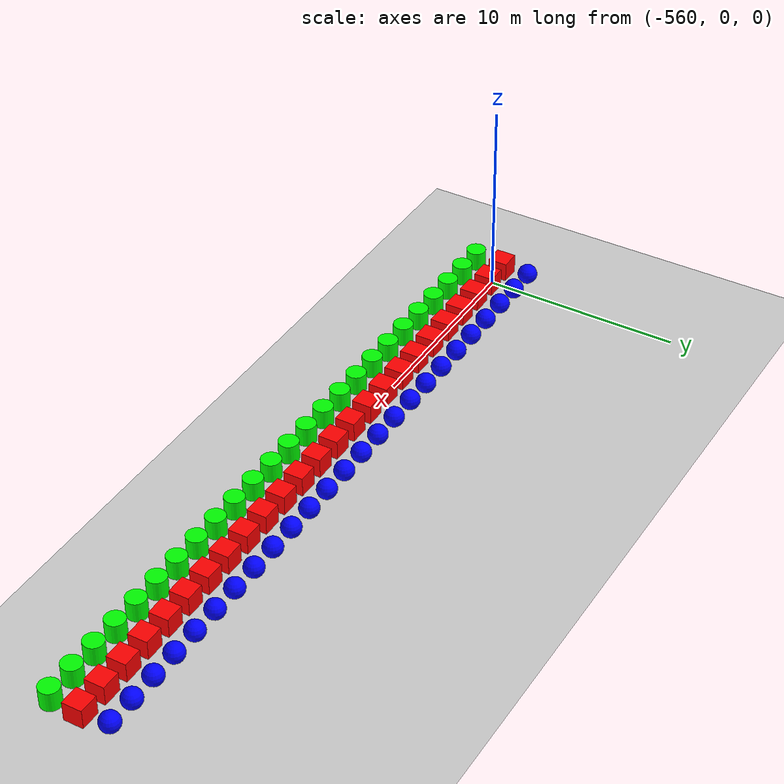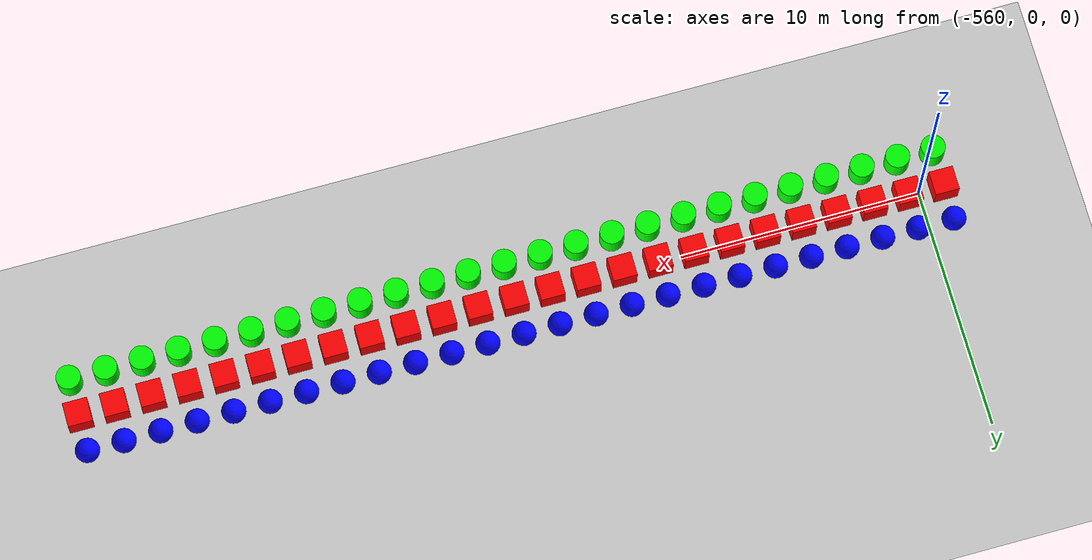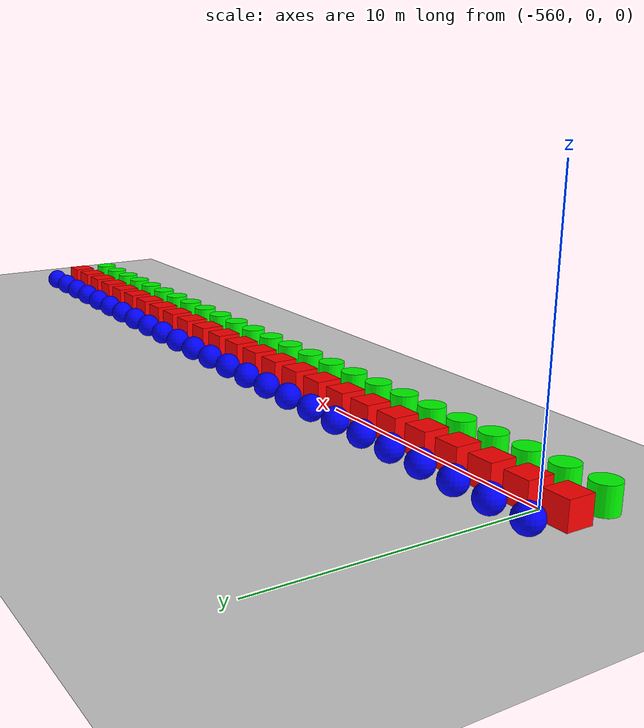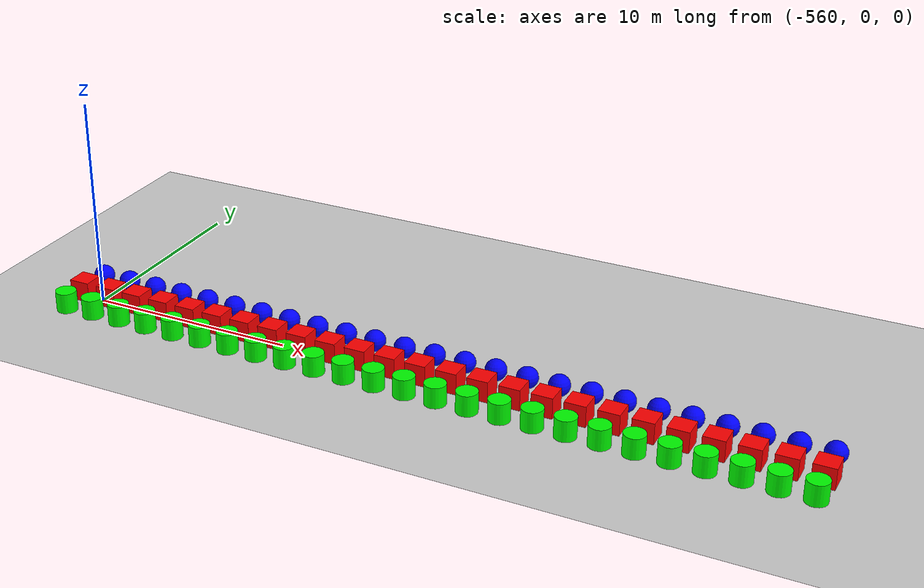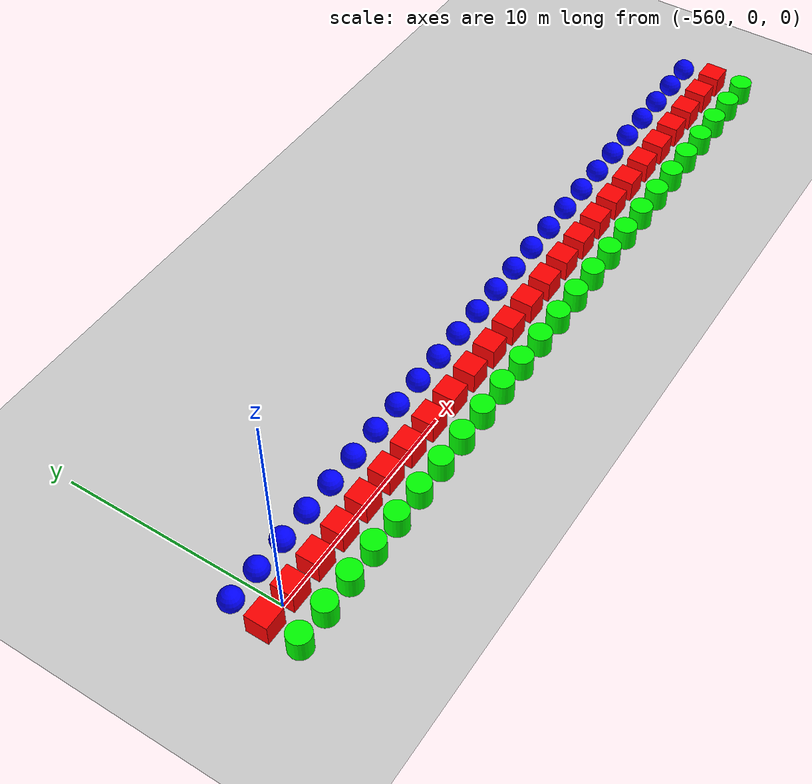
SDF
<sdf version="1.6">
 <world name="shapes">
  <model name="ground_plane">
   <static>true</static>
   <link name="link">
    <collision name="collision">
     <geometry><plane><normal>0 0 1</normal><size>100 100</size></plane></geometry>
    </collision>
    <visual name="visual">
     <geometry><plane><normal>0 0 1</normal><size>100 100</size></plane></geometry>
     <material>
      <ambient>0.8 0.8 0.8 1</ambient>
      <diffuse>0.8 0.8 0.8 1</diffuse>
      <specular>0.8 0.8 0.8 1</specular>
     </material>
    </visual>
   </link>
  </model>
  <model name="box_126">
   <pose>-561.0 0 0.5 0 0 0</pose>
   <link name="box_link">
    <inertial>
     <inertia><ixx>1</ixx><ixy>0</ixy><ixz>0</ixz><iyy>1</iyy><iyz>0</iyz><izz>1</izz></inertia>
     <mass>1.0</mass>
    </inertial>
    <collision name="box_collision"><geometry><box><size>1 1 1</size></box></geometry></collision>
    <visual name="box_visual">
     <geometry><box><size>1 1 1</size></box></geometry>
     <material><ambient>1 0 0 1</ambient><diffuse>1 0 0 1</diffuse><specular>1 0 0 1</specular></material>
    </visual>
   </link>
  </model>
  <model name="cylinder_126">
   <pose>-561.0 -1.5 0.5 0 0 0</pose>
   <link name="cylinder_link">
    <inertial>
     <inertia><ixx>2</ixx><ixy>0</ixy><ixz>0</ixz><iyy>2</iyy><iyz>0</iyz><izz>2</izz></inertia>
     <mass>2.0</mass>
    </inertial>
    <collision name="cylinder_collision">
     <geometry><cylinder><radius>0.5</radius><length>1.0</length></cylinder></geometry>
    </collision>
    <visual name="cylinder_visual">
     <geometry><cylinder><radius>0.5</radius><length>1.0</length></cylinder></geometry>
     <material><ambient>0 1 0 1</ambient><diffuse>0 1 0 1</diffuse><specular>0 1 0 1</specular></material>
    </visual>
   </link>
  </model>
  <model name="sphere_126">
   <pose>-561.0 1.5 0.5 0 0 0</pose>
   <link name="sphere_link">
    <inertial>
     <inertia><ixx>3</ixx><ixy>0</ixy><ixz>0</ixz><iyy>3</iyy><iyz>0</iyz><izz>3</izz></inertia>
     <mass>3.0</mass>
    </inertial>
    <collision name="sphere_collision"><geometry><sphere><radius>0.5</radius></sphere></geometry></collision>
    <visual name="sphere_visual">
     <geometry><sphere><radius>0.5</radius></sphere></geometry>
     <material><ambient>0 0 1 1</ambient><diffuse>0 0 1 1</diffuse><specular>0 0 1 1</specular></material>
    </visual>
   </link>
  </model>
  <model name="box_127">
   <pose>-559.5 0 0.5 0 0 0</pose>
   <link name="box_link">
    <inertial>
     <inertia><ixx>1</ixx><ixy>0</ixy><ixz>0</ixz><iyy>1</iyy><iyz>0</iyz><izz>1</izz></inertia>
     <mass>1.0</mass>
    </inertial>
    <collision name="box_collision"><geometry><box><size>1 1 1</size></box></geometry></collision>
    <visual name="box_visual">
     <geometry><box><size>1 1 1</size></box></geometry>
     <material><ambient>1 0 0 1</ambient><diffuse>1 0 0 1</diffuse><specular>1 0 0 1</specular></material>
    </visual>
   </link>
  </model>
  <model name="cylinder_127">
   <pose>-559.5 -1.5 0.5 0 0 0</pose>
   <link name="cylinder_link">
    <inertial>
     <inertia><ixx>2</ixx><ixy>0</ixy><ixz>0</ixz><iyy>2</iyy><iyz>0</iyz><izz>2</izz></inertia>
     <mass>2.0</mass>
    </inertial>
    <collision name="cylinder_collision">
     <geometry><cylinder><radius>0.5</radius><length>1.0</length></cylinder></geometry>
    </collision>
    <visual name="cylinder_visual">
     <geometry><cylinder><radius>0.5</radius><length>1.0</length></cylinder></geometry>
     <material><ambient>0 1 0 1</ambient><diffuse>0 1 0 1</diffuse><specular>0 1 0 1</specular></material>
    </visual>
   </link>
  </model>
  <model name="sphere_127">
   <pose>-559.5 1.5 0.5 0 0 0</pose>
   <link name="sphere_link">
    <inertial>
     <inertia><ixx>3</ixx><ixy>0</ixy><ixz>0</ixz><iyy>3</iyy><iyz>0</iyz><izz>3</izz></inertia>
     <mass>3.0</mass>
    </inertial>
    <collision name="sphere_collision"><geometry><sphere><radius>0.5</radius></sphere></geometry></collision>
    <visual name="sphere_visual">
     <geometry><sphere><radius>0.5</radius></sphere></geometry>
     <material><ambient>0 0 1 1</ambient><diffuse>0 0 1 1</diffuse><specular>0 0 1 1</specular></material>
    </visual>
   </link>
  </model>
  <model name="box_128">
   <pose>-558.0 0 0.5 0 0 0</pose>
   <link name="box_link">
    <inertial>
     <inertia><ixx>1</ixx><ixy>0</ixy><ixz>0</ixz><iyy>1</iyy><iyz>0</iyz><izz>1</izz></inertia>
     <mass>1.0</mass>
    </inertial>
    <collision name="box_collision"><geometry><box><size>1 1 1</size></box></geometry></collision>
    <visual name="box_visual">
     <geometry><box><size>1 1 1</size></box></geometry>
     <material><ambient>1 0 0 1</ambient><diffuse>1 0 0 1</diffuse><specular>1 0 0 1</specular></material>
    </visual>
   </link>
  </model>
  <model name="cylinder_128">
   <pose>-558.0 -1.5 0.5 0 0 0</pose>
   <link name="cylinder_link">
    <inertial>
     <inertia><ixx>2</ixx><ixy>0</ixy><ixz>0</ixz><iyy>2</iyy><iyz>0</iyz><izz>2</izz></inertia>
     <mass>2.0</mass>
    </inertial>
    <collision name="cylinder_collision">
     <geometry><cylinder><radius>0.5</radius><length>1.0</length></cylinder></geometry>
    </collision>
    <visual name="cylinder_visual">
     <geometry><cylinder><radius>0.5</radius><length>1.0</length></cylinder></geometry>
     <material><ambient>0 1 0 1</ambient><diffuse>0 1 0 1</diffuse><specular>0 1 0 1</specular></material>
    </visual>
   </link>
  </model>
  <model name="sphere_128">
   <pose>-558.0 1.5 0.5 0 0 0</pose>
   <link name="sphere_link">
    <inertial>
     <inertia><ixx>3</ixx><ixy>0</ixy><ixz>0</ixz><iyy>3</iyy><iyz>0</iyz><izz>3</izz></inertia>
     <mass>3.0</mass>
    </inertial>
    <collision name="sphere_collision"><geometry><sphere><radius>0.5</radius></sphere></geometry></collision>
    <visual name="sphere_visual">
     <geometry><sphere><radius>0.5</radius></sphere></geometry>
     <material><ambient>0 0 1 1</ambient><diffuse>0 0 1 1</diffuse><specular>0 0 1 1</specular></material>
    </visual>
   </link>
  </model>
  <model name="box_129">
   <pose>-556.5 0 0.5 0 0 0</pose>
   <link name="box_link">
    <inertial>
     <inertia><ixx>1</ixx><ixy>0</ixy><ixz>0</ixz><iyy>1</iyy><iyz>0</iyz><izz>1</izz></inertia>
     <mass>1.0</mass>
    </inertial>
    <collision name="box_collision"><geometry><box><size>1 1 1</size></box></geometry></collision>
    <visual name="box_visual">
     <geometry><box><size>1 1 1</size></box></geometry>
     <material><ambient>1 0 0 1</ambient><diffuse>1 0 0 1</diffuse><specular>1 0 0 1</specular></material>
    </visual>
   </link>
  </model>
  <model name="cylinder_129">
   <pose>-556.5 -1.5 0.5 0 0 0</pose>
   <link name="cylinder_link">
    <inertial>
     <inertia><ixx>2</ixx><ixy>0</ixy><ixz>0</ixz><iyy>2</iyy><iyz>0</iyz><izz>2</izz></inertia>
     <mass>2.0</mass>
    </inertial>
    <collision name="cylinder_collision">
     <geometry><cylinder><radius>0.5</radius><length>1.0</length></cylinder></geometry>
    </collision>
    <visual name="cylinder_visual">
     <geometry><cylinder><radius>0.5</radius><length>1.0</length></cylinder></geometry>
     <material><ambient>0 1 0 1</ambient><diffuse>0 1 0 1</diffuse><specular>0 1 0 1</specular></material>
    </visual>
   </link>
  </model>
  <model name="sphere_129">
   <pose>-556.5 1.5 0.5 0 0 0</pose>
   <link name="sphere_link">
    <inertial>
     <inertia><ixx>3</ixx><ixy>0</ixy><ixz>0</ixz><iyy>3</iyy><iyz>0</iyz><izz>3</izz></inertia>
     <mass>3.0</mass>
    </inertial>
    <collision name="sphere_collision"><geometry><sphere><radius>0.5</radius></sphere></geometry></collision>
    <visual name="sphere_visual">
     <geometry><sphere><radius>0.5</radius></sphere></geometry>
     <material><ambient>0 0 1 1</ambient><diffuse>0 0 1 1</diffuse><specular>0 0 1 1</specular></material>
    </visual>
   </link>
  </model>
  <model name="box_130">
   <pose>-555.0 0 0.5 0 0 0</pose>
   <link name="box_link">
    <inertial>
     <inertia><ixx>1</ixx><ixy>0</ixy><ixz>0</ixz><iyy>1</iyy><iyz>0</iyz><izz>1</izz></inertia>
     <mass>1.0</mass>
    </inertial>
    <collision name="box_collision"><geometry><box><size>1 1 1</size></box></geometry></collision>
    <visual name="box_visual">
     <geometry><box><size>1 1 1</size></box></geometry>
     <material><ambient>1 0 0 1</ambient><diffuse>1 0 0 1</diffuse><specular>1 0 0 1</specular></material>
    </visual>
   </link>
  </model>
  <model name="cylinder_130">
   <pose>-555.0 -1.5 0.5 0 0 0</pose>
   <link name="cylinder_link">
    <inertial>
     <inertia><ixx>2</ixx><ixy>0</ixy><ixz>0</ixz><iyy>2</iyy><iyz>0</iyz><izz>2</izz></inertia>
     <mass>2.0</mass>
    </inertial>
    <collision name="cylinder_collision">
     <geometry><cylinder><radius>0.5</radius><length>1.0</length></cylinder></geometry>
    </collision>
    <visual name="cylinder_visual">
     <geometry><cylinder><radius>0.5</radius><length>1.0</length></cylinder></geometry>
     <material><ambient>0 1 0 1</ambient><diffuse>0 1 0 1</diffuse><specular>0 1 0 1</specular></material>
    </visual>
   </link>
  </model>
  <model name="sphere_130">
   <pose>-555.0 1.5 0.5 0 0 0</pose>
   <link name="sphere_link">
    <inertial>
     <inertia><ixx>3</ixx><ixy>0</ixy><ixz>0</ixz><iyy>3</iyy><iyz>0</iyz><izz>3</izz></inertia>
     <mass>3.0</mass>
    </inertial>
    <collision name="sphere_collision"><geometry><sphere><radius>0.5</radius></sphere></geometry></collision>
    <visual name="sphere_visual">
     <geometry><sphere><radius>0.5</radius></sphere></geometry>
     <material><ambient>0 0 1 1</ambient><diffuse>0 0 1 1</diffuse><specular>0 0 1 1</specular></material>
    </visual>
   </link>
  </model>
  <model name="box_131">
   <pose>-553.5 0 0.5 0 0 0</pose>
   <link name="box_link">
    <inertial>
     <inertia><ixx>1</ixx><ixy>0</ixy><ixz>0</ixz><iyy>1</iyy><iyz>0</iyz><izz>1</izz></inertia>
     <mass>1.0</mass>
    </inertial>
    <collision name="box_collision"><geometry><box><size>1 1 1</size></box></geometry></collision>
    <visual name="box_visual">
     <geometry><box><size>1 1 1</size></box></geometry>
     <material><ambient>1 0 0 1</ambient><diffuse>1 0 0 1</diffuse><specular>1 0 0 1</specular></material>
    </visual>
   </link>
  </model>
  <model name="cylinder_131">
   <pose>-553.5 -1.5 0.5 0 0 0</pose>
   <link name="cylinder_link">
    <inertial>
     <inertia><ixx>2</ixx><ixy>0</ixy><ixz>0</ixz><iyy>2</iyy><iyz>0</iyz><izz>2</izz></inertia>
     <mass>2.0</mass>
    </inertial>
    <collision name="cylinder_collision">
     <geometry><cylinder><radius>0.5</radius><length>1.0</length></cylinder></geometry>
    </collision>
    <visual name="cylinder_visual">
     <geometry><cylinder><radius>0.5</radius><length>1.0</length></cylinder></geometry>
     <material><ambient>0 1 0 1</ambient><diffuse>0 1 0 1</diffuse><specular>0 1 0 1</specular></material>
    </visual>
   </link>
  </model>
  <model name="sphere_131">
   <pose>-553.5 1.5 0.5 0 0 0</pose>
   <link name="sphere_link">
    <inertial>
     <inertia><ixx>3</ixx><ixy>0</ixy><ixz>0</ixz><iyy>3</iyy><iyz>0</iyz><izz>3</izz></inertia>
     <mass>3.0</mass>
    </inertial>
    <collision name="sphere_collision"><geometry><sphere><radius>0.5</radius></sphere></geometry></collision>
    <visual name="sphere_visual">
     <geometry><sphere><radius>0.5</radius></sphere></geometry>
     <material><ambient>0 0 1 1</ambient><diffuse>0 0 1 1</diffuse><specular>0 0 1 1</specular></material>
    </visual>
   </link>
  </model>
  <model name="box_132">
   <pose>-552.0 0 0.5 0 0 0</pose>
   <link name="box_link">
    <inertial>
     <inertia><ixx>1</ixx><ixy>0</ixy><ixz>0</ixz><iyy>1</iyy><iyz>0</iyz><izz>1</izz></inertia>
     <mass>1.0</mass>
    </inertial>
    <collision name="box_collision"><geometry><box><size>1 1 1</size></box></geometry></collision>
    <visual name="box_visual">
     <geometry><box><size>1 1 1</size></box></geometry>
     <material><ambient>1 0 0 1</ambient><diffuse>1 0 0 1</diffuse><specular>1 0 0 1</specular></material>
    </visual>
   </link>
  </model>
  <model name="cylinder_132">
   <pose>-552.0 -1.5 0.5 0 0 0</pose>
   <link name="cylinder_link">
    <inertial>
     <inertia><ixx>2</ixx><ixy>0</ixy><ixz>0</ixz><iyy>2</iyy><iyz>0</iyz><izz>2</izz></inertia>
     <mass>2.0</mass>
    </inertial>
    <collision name="cylinder_collision">
     <geometry><cylinder><radius>0.5</radius><length>1.0</length></cylinder></geometry>
    </collision>
    <visual name="cylinder_visual">
     <geometry><cylinder><radius>0.5</radius><length>1.0</length></cylinder></geometry>
     <material><ambient>0 1 0 1</ambient><diffuse>0 1 0 1</diffuse><specular>0 1 0 1</specular></material>
    </visual>
   </link>
  </model>
  <model name="sphere_132">
   <pose>-552.0 1.5 0.5 0 0 0</pose>
   <link name="sphere_link">
    <inertial>
     <inertia><ixx>3</ixx><ixy>0</ixy><ixz>0</ixz><iyy>3</iyy><iyz>0</iyz><izz>3</izz></inertia>
     <mass>3.0</mass>
    </inertial>
    <collision name="sphere_collision"><geometry><sphere><radius>0.5</radius></sphere></geometry></collision>
    <visual name="sphere_visual">
     <geometry><sphere><radius>0.5</radius></sphere></geometry>
     <material><ambient>0 0 1 1</ambient><diffuse>0 0 1 1</diffuse><specular>0 0 1 1</specular></material>
    </visual>
   </link>
  </model>
  <model name="box_133">
   <pose>-550.5 0 0.5 0 0 0</pose>
   <link name="box_link">
    <inertial>
     <inertia><ixx>1</ixx><ixy>0</ixy><ixz>0</ixz><iyy>1</iyy><iyz>0</iyz><izz>1</izz></inertia>
     <mass>1.0</mass>
    </inertial>
    <collision name="box_collision"><geometry><box><size>1 1 1</size></box></geometry></collision>
    <visual name="box_visual">
     <geometry><box><size>1 1 1</size></box></geometry>
     <material><ambient>1 0 0 1</ambient><diffuse>1 0 0 1</diffuse><specular>1 0 0 1</specular></material>
    </visual>
   </link>
  </model>
  <model name="cylinder_133">
   <pose>-550.5 -1.5 0.5 0 0 0</pose>
   <link name="cylinder_link">
    <inertial>
     <inertia><ixx>2</ixx><ixy>0</ixy><ixz>0</ixz><iyy>2</iyy><iyz>0</iyz><izz>2</izz></inertia>
     <mass>2.0</mass>
    </inertial>
    <collision name="cylinder_collision">
     <geometry><cylinder><radius>0.5</radius><length>1.0</length></cylinder></geometry>
    </collision>
    <visual name="cylinder_visual">
     <geometry><cylinder><radius>0.5</radius><length>1.0</length></cylinder></geometry>
     <material><ambient>0 1 0 1</ambient><diffuse>0 1 0 1</diffuse><specular>0 1 0 1</specular></material>
    </visual>
   </link>
  </model>
  <model name="sphere_133">
   <pose>-550.5 1.5 0.5 0 0 0</pose>
   <link name="sphere_link">
    <inertial>
     <inertia><ixx>3</ixx><ixy>0</ixy><ixz>0</ixz><iyy>3</iyy><iyz>0</iyz><izz>3</izz></inertia>
     <mass>3.0</mass>
    </inertial>
    <collision name="sphere_collision"><geometry><sphere><radius>0.5</radius></sphere></geometry></collision>
    <visual name="sphere_visual">
     <geometry><sphere><radius>0.5</radius></sphere></geometry>
     <material><ambient>0 0 1 1</ambient><diffuse>0 0 1 1</diffuse><specular>0 0 1 1</specular></material>
    </visual>
   </link>
  </model>
  <model name="box_134">
   <pose>-549.0 0 0.5 0 0 0</pose>
   <link name="box_link">
    <inertial>
     <inertia><ixx>1</ixx><ixy>0</ixy><ixz>0</ixz><iyy>1</iyy><iyz>0</iyz><izz>1</izz></inertia>
     <mass>1.0</mass>
    </inertial>
    <collision name="box_collision"><geometry><box><size>1 1 1</size></box></geometry></collision>
    <visual name="box_visual">
     <geometry><box><size>1 1 1</size></box></geometry>
     <material><ambient>1 0 0 1</ambient><diffuse>1 0 0 1</diffuse><specular>1 0 0 1</specular></material>
    </visual>
   </link>
  </model>
  <model name="cylinder_134">
   <pose>-549.0 -1.5 0.5 0 0 0</pose>
   <link name="cylinder_link">
    <inertial>
     <inertia><ixx>2</ixx><ixy>0</ixy><ixz>0</ixz><iyy>2</iyy><iyz>0</iyz><izz>2</izz></inertia>
     <mass>2.0</mass>
    </inertial>
    <collision name="cylinder_collision">
     <geometry><cylinder><radius>0.5</radius><length>1.0</length></cylinder></geometry>
    </collision>
    <visual name="cylinder_visual">
     <geometry><cylinder><radius>0.5</radius><length>1.0</length></cylinder></geometry>
     <material><ambient>0 1 0 1</ambient><diffuse>0 1 0 1</diffuse><specular>0 1 0 1</specular></material>
    </visual>
   </link>
  </model>
  <model name="sphere_134">
   <pose>-549.0 1.5 0.5 0 0 0</pose>
   <link name="sphere_link">
    <inertial>
     <inertia><ixx>3</ixx><ixy>0</ixy><ixz>0</ixz><iyy>3</iyy><iyz>0</iyz><izz>3</izz></inertia>
     <mass>3.0</mass>
    </inertial>
    <collision name="sphere_collision"><geometry><sphere><radius>0.5</radius></sphere></geometry></collision>
    <visual name="sphere_visual">
     <geometry><sphere><radius>0.5</radius></sphere></geometry>
     <material><ambient>0 0 1 1</ambient><diffuse>0 0 1 1</diffuse><specular>0 0 1 1</specular></material>
    </visual>
   </link>
  </model>
  <model name="box_135">
   <pose>-547.5 0 0.5 0 0 0</pose>
   <link name="box_link">
    <inertial>
     <inertia><ixx>1</ixx><ixy>0</ixy><ixz>0</ixz><iyy>1</iyy><iyz>0</iyz><izz>1</izz></inertia>
     <mass>1.0</mass>
    </inertial>
    <collision name="box_collision"><geometry><box><size>1 1 1</size></box></geometry></collision>
    <visual name="box_visual">
     <geometry><box><size>1 1 1</size></box></geometry>
     <material><ambient>1 0 0 1</ambient><diffuse>1 0 0 1</diffuse><specular>1 0 0 1</specular></material>
    </visual>
   </link>
  </model>
  <model name="cylinder_135">
   <pose>-547.5 -1.5 0.5 0 0 0</pose>
   <link name="cylinder_link">
    <inertial>
     <inertia><ixx>2</ixx><ixy>0</ixy><ixz>0</ixz><iyy>2</iyy><iyz>0</iyz><izz>2</izz></inertia>
     <mass>2.0</mass>
    </inertial>
    <collision name="cylinder_collision">
     <geometry><cylinder><radius>0.5</radius><length>1.0</length></cylinder></geometry>
    </collision>
    <visual name="cylinder_visual">
     <geometry><cylinder><radius>0.5</radius><length>1.0</length></cylinder></geometry>
     <material><ambient>0 1 0 1</ambient><diffuse>0 1 0 1</diffuse><specular>0 1 0 1</specular></material>
    </visual>
   </link>
  </model>
  <model name="sphere_135">
   <pose>-547.5 1.5 0.5 0 0 0</pose>
   <link name="sphere_link">
    <inertial>
     <inertia><ixx>3</ixx><ixy>0</ixy><ixz>0</ixz><iyy>3</iyy><iyz>0</iyz><izz>3</izz></inertia>
     <mass>3.0</mass>
    </inertial>
    <collision name="sphere_collision"><geometry><sphere><radius>0.5</radius></sphere></geometry></collision>
    <visual name="sphere_visual">
     <geometry><sphere><radius>0.5</radius></sphere></geometry>
     <material><ambient>0 0 1 1</ambient><diffuse>0 0 1 1</diffuse><specular>0 0 1 1</specular></material>
    </visual>
   </link>
  </model>
  <model name="box_136">
   <pose>-546.0 0 0.5 0 0 0</pose>
   <link name="box_link">
    <inertial>
     <inertia><ixx>1</ixx><ixy>0</ixy><ixz>0</ixz><iyy>1</iyy><iyz>0</iyz><izz>1</izz></inertia>
     <mass>1.0</mass>
    </inertial>
    <collision name="box_collision"><geometry><box><size>1 1 1</size></box></geometry></collision>
    <visual name="box_visual">
     <geometry><box><size>1 1 1</size></box></geometry>
     <material><ambient>1 0 0 1</ambient><diffuse>1 0 0 1</diffuse><specular>1 0 0 1</specular></material>
    </visual>
   </link>
  </model>
  <model name="cylinder_136">
   <pose>-546.0 -1.5 0.5 0 0 0</pose>
   <link name="cylinder_link">
    <inertial>
     <inertia><ixx>2</ixx><ixy>0</ixy><ixz>0</ixz><iyy>2</iyy><iyz>0</iyz><izz>2</izz></inertia>
     <mass>2.0</mass>
    </inertial>
    <collision name="cylinder_collision">
     <geometry><cylinder><radius>0.5</radius><length>1.0</length></cylinder></geometry>
    </collision>
    <visual name="cylinder_visual">
     <geometry><cylinder><radius>0.5</radius><length>1.0</length></cylinder></geometry>
     <material><ambient>0 1 0 1</ambient><diffuse>0 1 0 1</diffuse><specular>0 1 0 1</specular></material>
    </visual>
   </link>
  </model>
  <model name="sphere_136">
   <pose>-546.0 1.5 0.5 0 0 0</pose>
   <link name="sphere_link">
    <inertial>
     <inertia><ixx>3</ixx><ixy>0</ixy><ixz>0</ixz><iyy>3</iyy><iyz>0</iyz><izz>3</izz></inertia>
     <mass>3.0</mass>
    </inertial>
    <collision name="sphere_collision"><geometry><sphere><radius>0.5</radius></sphere></geometry></collision>
    <visual name="sphere_visual">
     <geometry><sphere><radius>0.5</radius></sphere></geometry>
     <material><ambient>0 0 1 1</ambient><diffuse>0 0 1 1</diffuse><specular>0 0 1 1</specular></material>
    </visual>
   </link>
  </model>
  <model name="box_137">
   <pose>-544.5 0 0.5 0 0 0</pose>
   <link name="box_link">
    <inertial>
     <inertia><ixx>1</ixx><ixy>0</ixy><ixz>0</ixz><iyy>1</iyy><iyz>0</iyz><izz>1</izz></inertia>
     <mass>1.0</mass>
    </inertial>
    <collision name="box_collision"><geometry><box><size>1 1 1</size></box></geometry></collision>
    <visual name="box_visual">
     <geometry><box><size>1 1 1</size></box></geometry>
     <material><ambient>1 0 0 1</ambient><diffuse>1 0 0 1</diffuse><specular>1 0 0 1</specular></material>
    </visual>
   </link>
  </model>
  <model name="cylinder_137">
   <pose>-544.5 -1.5 0.5 0 0 0</pose>
   <link name="cylinder_link">
    <inertial>
     <inertia><ixx>2</ixx><ixy>0</ixy><ixz>0</ixz><iyy>2</iyy><iyz>0</iyz><izz>2</izz></inertia>
     <mass>2.0</mass>
    </inertial>
    <collision name="cylinder_collision">
     <geometry><cylinder><radius>0.5</radius><length>1.0</length></cylinder></geometry>
    </collision>
    <visual name="cylinder_visual">
     <geometry><cylinder><radius>0.5</radius><length>1.0</length></cylinder></geometry>
     <material><ambient>0 1 0 1</ambient><diffuse>0 1 0 1</diffuse><specular>0 1 0 1</specular></material>
    </visual>
   </link>
  </model>
  <model name="sphere_137">
   <pose>-544.5 1.5 0.5 0 0 0</pose>
   <link name="sphere_link">
    <inertial>
     <inertia><ixx>3</ixx><ixy>0</ixy><ixz>0</ixz><iyy>3</iyy><iyz>0</iyz><izz>3</izz></inertia>
     <mass>3.0</mass>
    </inertial>
    <collision name="sphere_collision"><geometry><sphere><radius>0.5</radius></sphere></geometry></collision>
    <visual name="sphere_visual">
     <geometry><sphere><radius>0.5</radius></sphere></geometry>
     <material><ambient>0 0 1 1</ambient><diffuse>0 0 1 1</diffuse><specular>0 0 1 1</specular></material>
    </visual>
   </link>
  </model>
  <model name="box_138">
   <pose>-543.0 0 0.5 0 0 0</pose>
   <link name="box_link">
    <inertial>
     <inertia><ixx>1</ixx><ixy>0</ixy><ixz>0</ixz><iyy>1</iyy><iyz>0</iyz><izz>1</izz></inertia>
     <mass>1.0</mass>
    </inertial>
    <collision name="box_collision"><geometry><box><size>1 1 1</size></box></geometry></collision>
    <visual name="box_visual">
     <geometry><box><size>1 1 1</size></box></geometry>
     <material><ambient>1 0 0 1</ambient><diffuse>1 0 0 1</diffuse><specular>1 0 0 1</specular></material>
    </visual>
   </link>
  </model>
  <model name="cylinder_138">
   <pose>-543.0 -1.5 0.5 0 0 0</pose>
   <link name="cylinder_link">
    <inertial>
     <inertia><ixx>2</ixx><ixy>0</ixy><ixz>0</ixz><iyy>2</iyy><iyz>0</iyz><izz>2</izz></inertia>
     <mass>2.0</mass>
    </inertial>
    <collision name="cylinder_collision">
     <geometry><cylinder><radius>0.5</radius><length>1.0</length></cylinder></geometry>
    </collision>
    <visual name="cylinder_visual">
     <geometry><cylinder><radius>0.5</radius><length>1.0</length></cylinder></geometry>
     <material><ambient>0 1 0 1</ambient><diffuse>0 1 0 1</diffuse><specular>0 1 0 1</specular></material>
    </visual>
   </link>
  </model>
  <model name="sphere_138">
   <pose>-543.0 1.5 0.5 0 0 0</pose>
   <link name="sphere_link">
    <inertial>
     <inertia><ixx>3</ixx><ixy>0</ixy><ixz>0</ixz><iyy>3</iyy><iyz>0</iyz><izz>3</izz></inertia>
     <mass>3.0</mass>
    </inertial>
    <collision name="sphere_collision"><geometry><sphere><radius>0.5</radius></sphere></geometry></collision>
    <visual name="sphere_visual">
     <geometry><sphere><radius>0.5</radius></sphere></geometry>
     <material><ambient>0 0 1 1</ambient><diffuse>0 0 1 1</diffuse><specular>0 0 1 1</specular></material>
    </visual>
   </link>
  </model>
  <model name="box_139">
   <pose>-541.5 0 0.5 0 0 0</pose>
   <link name="box_link">
    <inertial>
     <inertia><ixx>1</ixx><ixy>0</ixy><ixz>0</ixz><iyy>1</iyy><iyz>0</iyz><izz>1</izz></inertia>
     <mass>1.0</mass>
    </inertial>
    <collision name="box_collision"><geometry><box><size>1 1 1</size></box></geometry></collision>
    <visual name="box_visual">
     <geometry><box><size>1 1 1</size></box></geometry>
     <material><ambient>1 0 0 1</ambient><diffuse>1 0 0 1</diffuse><specular>1 0 0 1</specular></material>
    </visual>
   </link>
  </model>
  <model name="cylinder_139">
   <pose>-541.5 -1.5 0.5 0 0 0</pose>
   <link name="cylinder_link">
    <inertial>
     <inertia><ixx>2</ixx><ixy>0</ixy><ixz>0</ixz><iyy>2</iyy><iyz>0</iyz><izz>2</izz></inertia>
     <mass>2.0</mass>
    </inertial>
    <collision name="cylinder_collision">
     <geometry><cylinder><radius>0.5</radius><length>1.0</length></cylinder></geometry>
    </collision>
    <visual name="cylinder_visual">
     <geometry><cylinder><radius>0.5</radius><length>1.0</length></cylinder></geometry>
     <material><ambient>0 1 0 1</ambient><diffuse>0 1 0 1</diffuse><specular>0 1 0 1</specular></material>
    </visual>
   </link>
  </model>
  <model name="sphere_139">
   <pose>-541.5 1.5 0.5 0 0 0</pose>
   <link name="sphere_link">
    <inertial>
     <inertia><ixx>3</ixx><ixy>0</ixy><ixz>0</ixz><iyy>3</iyy><iyz>0</iyz><izz>3</izz></inertia>
     <mass>3.0</mass>
    </inertial>
    <collision name="sphere_collision"><geometry><sphere><radius>0.5</radius></sphere></geometry></collision>
    <visual name="sphere_visual">
     <geometry><sphere><radius>0.5</radius></sphere></geometry>
     <material><ambient>0 0 1 1</ambient><diffuse>0 0 1 1</diffuse><specular>0 0 1 1</specular></material>
    </visual>
   </link>
  </model>
  <model name="box_140">
   <pose>-540.0 0 0.5 0 0 0</pose>
   <link name="box_link">
    <inertial>
     <inertia><ixx>1</ixx><ixy>0</ixy><ixz>0</ixz><iyy>1</iyy><iyz>0</iyz><izz>1</izz></inertia>
     <mass>1.0</mass>
    </inertial>
    <collision name="box_collision"><geometry><box><size>1 1 1</size></box></geometry></collision>
    <visual name="box_visual">
     <geometry><box><size>1 1 1</size></box></geometry>
     <material><ambient>1 0 0 1</ambient><diffuse>1 0 0 1</diffuse><specular>1 0 0 1</specular></material>
    </visual>
   </link>
  </model>
  <model name="cylinder_140">
   <pose>-540.0 -1.5 0.5 0 0 0</pose>
   <link name="cylinder_link">
    <inertial>
     <inertia><ixx>2</ixx><ixy>0</ixy><ixz>0</ixz><iyy>2</iyy><iyz>0</iyz><izz>2</izz></inertia>
     <mass>2.0</mass>
    </inertial>
    <collision name="cylinder_collision">
     <geometry><cylinder><radius>0.5</radius><length>1.0</length></cylinder></geometry>
    </collision>
    <visual name="cylinder_visual">
     <geometry><cylinder><radius>0.5</radius><length>1.0</length></cylinder></geometry>
     <material><ambient>0 1 0 1</ambient><diffuse>0 1 0 1</diffuse><specular>0 1 0 1</specular></material>
    </visual>
   </link>
  </model>
  <model name="sphere_140">
   <pose>-540.0 1.5 0.5 0 0 0</pose>
   <link name="sphere_link">
    <inertial>
     <inertia><ixx>3</ixx><ixy>0</ixy><ixz>0</ixz><iyy>3</iyy><iyz>0</iyz><izz>3</izz></inertia>
     <mass>3.0</mass>
    </inertial>
    <collision name="sphere_collision"><geometry><sphere><radius>0.5</radius></sphere></geometry></collision>
    <visual name="sphere_visual">
     <geometry><sphere><radius>0.5</radius></sphere></geometry>
     <material><ambient>0 0 1 1</ambient><diffuse>0 0 1 1</diffuse><specular>0 0 1 1</specular></material>
    </visual>
   </link>
  </model>
  <model name="box_141">
   <pose>-538.5 0 0.5 0 0 0</pose>
   <link name="box_link">
    <inertial>
     <inertia><ixx>1</ixx><ixy>0</ixy><ixz>0</ixz><iyy>1</iyy><iyz>0</iyz><izz>1</izz></inertia>
     <mass>1.0</mass>
    </inertial>
    <collision name="box_collision"><geometry><box><size>1 1 1</size></box></geometry></collision>
    <visual name="box_visual">
     <geometry><box><size>1 1 1</size></box></geometry>
     <material><ambient>1 0 0 1</ambient><diffuse>1 0 0 1</diffuse><specular>1 0 0 1</specular></material>
    </visual>
   </link>
  </model>
  <model name="cylinder_141">
   <pose>-538.5 -1.5 0.5 0 0 0</pose>
   <link name="cylinder_link">
    <inertial>
     <inertia><ixx>2</ixx><ixy>0</ixy><ixz>0</ixz><iyy>2</iyy><iyz>0</iyz><izz>2</izz></inertia>
     <mass>2.0</mass>
    </inertial>
    <collision name="cylinder_collision">
     <geometry><cylinder><radius>0.5</radius><length>1.0</length></cylinder></geometry>
    </collision>
    <visual name="cylinder_visual">
     <geometry><cylinder><radius>0.5</radius><length>1.0</length></cylinder></geometry>
     <material><ambient>0 1 0 1</ambient><diffuse>0 1 0 1</diffuse><specular>0 1 0 1</specular></material>
    </visual>
   </link>
  </model>
  <model name="sphere_141">
   <pose>-538.5 1.5 0.5 0 0 0</pose>
   <link name="sphere_link">
    <inertial>
     <inertia><ixx>3</ixx><ixy>0</ixy><ixz>0</ixz><iyy>3</iyy><iyz>0</iyz><izz>3</izz></inertia>
     <mass>3.0</mass>
    </inertial>
    <collision name="sphere_collision"><geometry><sphere><radius>0.5</radius></sphere></geometry></collision>
    <visual name="sphere_visual">
     <geometry><sphere><radius>0.5</radius></sphere></geometry>
     <material><ambient>0 0 1 1</ambient><diffuse>0 0 1 1</diffuse><specular>0 0 1 1</specular></material>
    </visual>
   </link>
  </model>
  <model name="box_142">
   <pose>-537.0 0 0.5 0 0 0</pose>
   <link name="box_link">
    <inertial>
     <inertia><ixx>1</ixx><ixy>0</ixy><ixz>0</ixz><iyy>1</iyy><iyz>0</iyz><izz>1</izz></inertia>
     <mass>1.0</mass>
    </inertial>
    <collision name="box_collision"><geometry><box><size>1 1 1</size></box></geometry></collision>
    <visual name="box_visual">
     <geometry><box><size>1 1 1</size></box></geometry>
     <material><ambient>1 0 0 1</ambient><diffuse>1 0 0 1</diffuse><specular>1 0 0 1</specular></material>
    </visual>
   </link>
  </model>
  <model name="cylinder_142">
   <pose>-537.0 -1.5 0.5 0 0 0</pose>
   <link name="cylinder_link">
    <inertial>
     <inertia><ixx>2</ixx><ixy>0</ixy><ixz>0</ixz><iyy>2</iyy><iyz>0</iyz><izz>2</izz></inertia>
     <mass>2.0</mass>
    </inertial>
    <collision name="cylinder_collision">
     <geometry><cylinder><radius>0.5</radius><length>1.0</length></cylinder></geometry>
    </collision>
    <visual name="cylinder_visual">
     <geometry><cylinder><radius>0.5</radius><length>1.0</length></cylinder></geometry>
     <material><ambient>0 1 0 1</ambient><diffuse>0 1 0 1</diffuse><specular>0 1 0 1</specular></material>
    </visual>
   </link>
  </model>
  <model name="sphere_142">
   <pose>-537.0 1.5 0.5 0 0 0</pose>
   <link name="sphere_link">
    <inertial>
     <inertia><ixx>3</ixx><ixy>0</ixy><ixz>0</ixz><iyy>3</iyy><iyz>0</iyz><izz>3</izz></inertia>
     <mass>3.0</mass>
    </inertial>
    <collision name="sphere_collision"><geometry><sphere><radius>0.5</radius></sphere></geometry></collision>
    <visual name="sphere_visual">
     <geometry><sphere><radius>0.5</radius></sphere></geometry>
     <material><ambient>0 0 1 1</ambient><diffuse>0 0 1 1</diffuse><specular>0 0 1 1</specular></material>
    </visual>
   </link>
  </model>
  <model name="box_143">
   <pose>-535.5 0 0.5 0 0 0</pose>
   <link name="box_link">
    <inertial>
     <inertia><ixx>1</ixx><ixy>0</ixy><ixz>0</ixz><iyy>1</iyy><iyz>0</iyz><izz>1</izz></inertia>
     <mass>1.0</mass>
    </inertial>
    <collision name="box_collision"><geometry><box><size>1 1 1</size></box></geometry></collision>
    <visual name="box_visual">
     <geometry><box><size>1 1 1</size></box></geometry>
     <material><ambient>1 0 0 1</ambient><diffuse>1 0 0 1</diffuse><specular>1 0 0 1</specular></material>
    </visual>
   </link>
  </model>
  <model name="cylinder_143">
   <pose>-535.5 -1.5 0.5 0 0 0</pose>
   <link name="cylinder_link">
    <inertial>
     <inertia><ixx>2</ixx><ixy>0</ixy><ixz>0</ixz><iyy>2</iyy><iyz>0</iyz><izz>2</izz></inertia>
     <mass>2.0</mass>
    </inertial>
    <collision name="cylinder_collision">
     <geometry><cylinder><radius>0.5</radius><length>1.0</length></cylinder></geometry>
    </collision>
    <visual name="cylinder_visual">
     <geometry><cylinder><radius>0.5</radius><length>1.0</length></cylinder></geometry>
     <material><ambient>0 1 0 1</ambient><diffuse>0 1 0 1</diffuse><specular>0 1 0 1</specular></material>
    </visual>
   </link>
  </model>
  <model name="sphere_143">
   <pose>-535.5 1.5 0.5 0 0 0</pose>
   <link name="sphere_link">
    <inertial>
     <inertia><ixx>3</ixx><ixy>0</ixy><ixz>0</ixz><iyy>3</iyy><iyz>0</iyz><izz>3</izz></inertia>
     <mass>3.0</mass>
    </inertial>
    <collision name="sphere_collision"><geometry><sphere><radius>0.5</radius></sphere></geometry></collision>
    <visual name="sphere_visual">
     <geometry><sphere><radius>0.5</radius></sphere></geometry>
     <material><ambient>0 0 1 1</ambient><diffuse>0 0 1 1</diffuse><specular>0 0 1 1</specular></material>
    </visual>
   </link>
  </model>
  <model name="box_144">
   <pose>-534.0 0 0.5 0 0 0</pose>
   <link name="box_link">
    <inertial>
     <inertia><ixx>1</ixx><ixy>0</ixy><ixz>0</ixz><iyy>1</iyy><iyz>0</iyz><izz>1</izz></inertia>
     <mass>1.0</mass>
    </inertial>
    <collision name="box_collision"><geometry><box><size>1 1 1</size></box></geometry></collision>
    <visual name="box_visual">
     <geometry><box><size>1 1 1</size></box></geometry>
     <material><ambient>1 0 0 1</ambient><diffuse>1 0 0 1</diffuse><specular>1 0 0 1</specular></material>
    </visual>
   </link>
  </model>
  <model name="cylinder_144">
   <pose>-534.0 -1.5 0.5 0 0 0</pose>
   <link name="cylinder_link">
    <inertial>
     <inertia><ixx>2</ixx><ixy>0</ixy><ixz>0</ixz><iyy>2</iyy><iyz>0</iyz><izz>2</izz></inertia>
     <mass>2.0</mass>
    </inertial>
    <collision name="cylinder_collision">
     <geometry><cylinder><radius>0.5</radius><length>1.0</length></cylinder></geometry>
    </collision>
    <visual name="cylinder_visual">
     <geometry><cylinder><radius>0.5</radius><length>1.0</length></cylinder></geometry>
     <material><ambient>0 1 0 1</ambient><diffuse>0 1 0 1</diffuse><specular>0 1 0 1</specular></material>
    </visual>
   </link>
  </model>
  <model name="sphere_144">
   <pose>-534.0 1.5 0.5 0 0 0</pose>
   <link name="sphere_link">
    <inertial>
     <inertia><ixx>3</ixx><ixy>0</ixy><ixz>0</ixz><iyy>3</iyy><iyz>0</iyz><izz>3</izz></inertia>
     <mass>3.0</mass>
    </inertial>
    <collision name="sphere_collision"><geometry><sphere><radius>0.5</radius></sphere></geometry></collision>
    <visual name="sphere_visual">
     <geometry><sphere><radius>0.5</radius></sphere></geometry>
     <material><ambient>0 0 1 1</ambient><diffuse>0 0 1 1</diffuse><specular>0 0 1 1</specular></material>
    </visual>
   </link>
  </model>
  <model name="box_145">
   <pose>-532.5 0 0.5 0 0 0</pose>
   <link name="box_link">
    <inertial>
     <inertia><ixx>1</ixx><ixy>0</ixy><ixz>0</ixz><iyy>1</iyy><iyz>0</iyz><izz>1</izz></inertia>
     <mass>1.0</mass>
    </inertial>
    <collision name="box_collision"><geometry><box><size>1 1 1</size></box></geometry></collision>
    <visual name="box_visual">
     <geometry><box><size>1 1 1</size></box></geometry>
     <material><ambient>1 0 0 1</ambient><diffuse>1 0 0 1</diffuse><specular>1 0 0 1</specular></material>
    </visual>
   </link>
  </model>
  <model name="cylinder_145">
   <pose>-532.5 -1.5 0.5 0 0 0</pose>
   <link name="cylinder_link">
    <inertial>
     <inertia><ixx>2</ixx><ixy>0</ixy><ixz>0</ixz><iyy>2</iyy><iyz>0</iyz><izz>2</izz></inertia>
     <mass>2.0</mass>
    </inertial>
    <collision name="cylinder_collision">
     <geometry><cylinder><radius>0.5</radius><length>1.0</length></cylinder></geometry>
    </collision>
    <visual name="cylinder_visual">
     <geometry><cylinder><radius>0.5</radius><length>1.0</length></cylinder></geometry>
     <material><ambient>0 1 0 1</ambient><diffuse>0 1 0 1</diffuse><specular>0 1 0 1</specular></material>
    </visual>
   </link>
  </model>
  <model name="sphere_145">
   <pose>-532.5 1.5 0.5 0 0 0</pose>
   <link name="sphere_link">
    <inertial>
     <inertia><ixx>3</ixx><ixy>0</ixy><ixz>0</ixz><iyy>3</iyy><iyz>0</iyz><izz>3</izz></inertia>
     <mass>3.0</mass>
    </inertial>
    <collision name="sphere_collision"><geometry><sphere><radius>0.5</radius></sphere></geometry></collision>
    <visual name="sphere_visual">
     <geometry><sphere><radius>0.5</radius></sphere></geometry>
     <material><ambient>0 0 1 1</ambient><diffuse>0 0 1 1</diffuse><specular>0 0 1 1</specular></material>
    </visual>
   </link>
  </model>
  <model name="box_146">
   <pose>-531.0 0 0.5 0 0 0</pose>
   <link name="box_link">
    <inertial>
     <inertia><ixx>1</ixx><ixy>0</ixy><ixz>0</ixz><iyy>1</iyy><iyz>0</iyz><izz>1</izz></inertia>
     <mass>1.0</mass>
    </inertial>
    <collision name="box_collision"><geometry><box><size>1 1 1</size></box></geometry></collision>
    <visual name="box_visual">
     <geometry><box><size>1 1 1</size></box></geometry>
     <material><ambient>1 0 0 1</ambient><diffuse>1 0 0 1</diffuse><specular>1 0 0 1</specular></material>
    </visual>
   </link>
  </model>
  <model name="cylinder_146">
   <pose>-531.0 -1.5 0.5 0 0 0</pose>
   <link name="cylinder_link">
    <inertial>
     <inertia><ixx>2</ixx><ixy>0</ixy><ixz>0</ixz><iyy>2</iyy><iyz>0</iyz><izz>2</izz></inertia>
     <mass>2.0</mass>
    </inertial>
    <collision name="cylinder_collision">
     <geometry><cylinder><radius>0.5</radius><length>1.0</length></cylinder></geometry>
    </collision>
    <visual name="cylinder_visual">
     <geometry><cylinder><radius>0.5</radius><length>1.0</length></cylinder></geometry>
     <material><ambient>0 1 0 1</ambient><diffuse>0 1 0 1</diffuse><specular>0 1 0 1</specular></material>
    </visual>
   </link>
  </model>
  <model name="sphere_146">
   <pose>-531.0 1.5 0.5 0 0 0</pose>
   <link name="sphere_link">
    <inertial>
     <inertia><ixx>3</ixx><ixy>0</ixy><ixz>0</ixz><iyy>3</iyy><iyz>0</iyz><izz>3</izz></inertia>
     <mass>3.0</mass>
    </inertial>
    <collision name="sphere_collision"><geometry><sphere><radius>0.5</radius></sphere></geometry></collision>
    <visual name="sphere_visual">
     <geometry><sphere><radius>0.5</radius></sphere></geometry>
     <material><ambient>0 0 1 1</ambient><diffuse>0 0 1 1</diffuse><specular>0 0 1 1</specular></material>
    </visual>
   </link>
  </model>
  <model name="box_147">
   <pose>-529.5 0 0.5 0 0 0</pose>
   <link name="box_link">
    <inertial>
     <inertia><ixx>1</ixx><ixy>0</ixy><ixz>0</ixz><iyy>1</iyy><iyz>0</iyz><izz>1</izz></inertia>
     <mass>1.0</mass>
    </inertial>
    <collision name="box_collision"><geometry><box><size>1 1 1</size></box></geometry></collision>
    <visual name="box_visual">
     <geometry><box><size>1 1 1</size></box></geometry>
     <material><ambient>1 0 0 1</ambient><diffuse>1 0 0 1</diffuse><specular>1 0 0 1</specular></material>
    </visual>
   </link>
  </model>
  <model name="cylinder_147">
   <pose>-529.5 -1.5 0.5 0 0 0</pose>
   <link name="cylinder_link">
    <inertial>
     <inertia><ixx>2</ixx><ixy>0</ixy><ixz>0</ixz><iyy>2</iyy><iyz>0</iyz><izz>2</izz></inertia>
     <mass>2.0</mass>
    </inertial>
    <collision name="cylinder_collision">
     <geometry><cylinder><radius>0.5</radius><length>1.0</length></cylinder></geometry>
    </collision>
    <visual name="cylinder_visual">
     <geometry><cylinder><radius>0.5</radius><length>1.0</length></cylinder></geometry>
     <material><ambient>0 1 0 1</ambient><diffuse>0 1 0 1</diffuse><specular>0 1 0 1</specular></material>
    </visual>
   </link>
  </model>
  <model name="sphere_147">
   <pose>-529.5 1.5 0.5 0 0 0</pose>
   <link name="sphere_link">
    <inertial>
     <inertia><ixx>3</ixx><ixy>0</ixy><ixz>0</ixz><iyy>3</iyy><iyz>0</iyz><izz>3</izz></inertia>
     <mass>3.0</mass>
    </inertial>
    <collision name="sphere_collision"><geometry><sphere><radius>0.5</radius></sphere></geometry></collision>
    <visual name="sphere_visual">
     <geometry><sphere><radius>0.5</radius></sphere></geometry>
     <material><ambient>0 0 1 1</ambient><diffuse>0 0 1 1</diffuse><specular>0 0 1 1</specular></material>
    </visual>
   </link>
  </model>
  <model name="box_148">
   <pose>-528.0 0 0.5 0 0 0</pose>
   <link name="box_link">
    <inertial>
     <inertia><ixx>1</ixx><ixy>0</ixy><ixz>0</ixz><iyy>1</iyy><iyz>0</iyz><izz>1</izz></inertia>
     <mass>1.0</mass>
    </inertial>
    <collision name="box_collision"><geometry><box><size>1 1 1</size></box></geometry></collision>
    <visual name="box_visual">
     <geometry><box><size>1 1 1</size></box></geometry>
     <material><ambient>1 0 0 1</ambient><diffuse>1 0 0 1</diffuse><specular>1 0 0 1</specular></material>
    </visual>
   </link>
  </model>
  <model name="cylinder_148">
   <pose>-528.0 -1.5 0.5 0 0 0</pose>
   <link name="cylinder_link">
    <inertial>
     <inertia><ixx>2</ixx><ixy>0</ixy><ixz>0</ixz><iyy>2</iyy><iyz>0</iyz><izz>2</izz></inertia>
     <mass>2.0</mass>
    </inertial>
    <collision name="cylinder_collision">
     <geometry><cylinder><radius>0.5</radius><length>1.0</length></cylinder></geometry>
    </collision>
    <visual name="cylinder_visual">
     <geometry><cylinder><radius>0.5</radius><length>1.0</length></cylinder></geometry>
     <material><ambient>0 1 0 1</ambient><diffuse>0 1 0 1</diffuse><specular>0 1 0 1</specular></material>
    </visual>
   </link>
  </model>
  <model name="sphere_148">
   <pose>-528.0 1.5 0.5 0 0 0</pose>
   <link name="sphere_link">
    <inertial>
     <inertia><ixx>3</ixx><ixy>0</ixy><ixz>0</ixz><iyy>3</iyy><iyz>0</iyz><izz>3</izz></inertia>
     <mass>3.0</mass>
    </inertial>
    <collision name="sphere_collision"><geometry><sphere><radius>0.5</radius></sphere></geometry></collision>
    <visual name="sphere_visual">
     <geometry><sphere><radius>0.5</radius></sphere></geometry>
     <material><ambient>0 0 1 1</ambient><diffuse>0 0 1 1</diffuse><specular>0 0 1 1</specular></material>
    </visual>
   </link>
  </model>
  <model name="box_149">
   <pose>-526.5 0 0.5 0 0 0</pose>
   <link name="box_link">
    <inertial>
     <inertia><ixx>1</ixx><ixy>0</ixy><ixz>0</ixz><iyy>1</iyy><iyz>0</iyz><izz>1</izz></inertia>
     <mass>1.0</mass>
    </inertial>
    <collision name="box_collision"><geometry><box><size>1 1 1</size></box></geometry></collision>
    <visual name="box_visual">
     <geometry><box><size>1 1 1</size></box></geometry>
     <material><ambient>1 0 0 1</ambient><diffuse>1 0 0 1</diffuse><specular>1 0 0 1</specular></material>
    </visual>
   </link>
  </model>
  <model name="cylinder_149">
   <pose>-526.5 -1.5 0.5 0 0 0</pose>
   <link name="cylinder_link">
    <inertial>
     <inertia><ixx>2</ixx><ixy>0</ixy><ixz>0</ixz><iyy>2</iyy><iyz>0</iyz><izz>2</izz></inertia>
     <mass>2.0</mass>
    </inertial>
    <collision name="cylinder_collision">
     <geometry><cylinder><radius>0.5</radius><length>1.0</length></cylinder></geometry>
    </collision>
    <visual name="cylinder_visual">
     <geometry><cylinder><radius>0.5</radius><length>1.0</length></cylinder></geometry>
     <material><ambient>0 1 0 1</ambient><diffuse>0 1 0 1</diffuse><specular>0 1 0 1</specular></material>
    </visual>
   </link>
  </model>
  <model name="sphere_149">
   <pose>-526.5 1.5 0.5 0 0 0</pose>
   <link name="sphere_link">
    <inertial>
     <inertia><ixx>3</ixx><ixy>0</ixy><ixz>0</ixz><iyy>3</iyy><iyz>0</iyz><izz>3</izz></inertia>
     <mass>3.0</mass>
    </inertial>
    <collision name="sphere_collision"><geometry><sphere><radius>0.5</radius></sphere></geometry></collision>
    <visual name="sphere_visual">
     <geometry><sphere><radius>0.5</radius></sphere></geometry>
     <material><ambient>0 0 1 1</ambient><diffuse>0 0 1 1</diffuse><specular>0 0 1 1</specular></material>
    </visual>
   </link>
  </model>
  <model name="box_150">
   <pose>-525.0 0 0.5 0 0 0</pose>
   <link name="box_link">
    <inertial>
     <inertia><ixx>1</ixx><ixy>0</ixy><ixz>0</ixz><iyy>1</iyy><iyz>0</iyz><izz>1</izz></inertia>
     <mass>1.0</mass>
    </inertial>
    <collision name="box_collision"><geometry><box><size>1 1 1</size></box></geometry></collision>
    <visual name="box_visual">
     <geometry><box><size>1 1 1</size></box></geometry>
     <material><ambient>1 0 0 1</ambient><diffuse>1 0 0 1</diffuse><specular>1 0 0 1</specular></material>
    </visual>
   </link>
  </model>
  <model name="cylinder_150">
   <pose>-525.0 -1.5 0.5 0 0 0</pose>
   <link name="cylinder_link">
    <inertial>
     <inertia><ixx>2</ixx><ixy>0</ixy><ixz>0</ixz><iyy>2</iyy><iyz>0</iyz><izz>2</izz></inertia>
     <mass>2.0</mass>
    </inertial>
    <collision name="cylinder_collision">
     <geometry><cylinder><radius>0.5</radius><length>1.0</length></cylinder></geometry>
    </collision>
    <visual name="cylinder_visual">
     <geometry><cylinder><radius>0.5</radius><length>1.0</length></cylinder></geometry>
     <material><ambient>0 1 0 1</ambient><diffuse>0 1 0 1</diffuse><specular>0 1 0 1</specular></material>
    </visual>
   </link>
  </model>
  <model name="sphere_150">
   <pose>-525.0 1.5 0.5 0 0 0</pose>
   <link name="sphere_link">
    <inertial>
     <inertia><ixx>3</ixx><ixy>0</ixy><ixz>0</ixz><iyy>3</iyy><iyz>0</iyz><izz>3</izz></inertia>
     <mass>3.0</mass>
    </inertial>
    <collision name="sphere_collision"><geometry><sphere><radius>0.5</radius></sphere></geometry></collision>
    <visual name="sphere_visual">
     <geometry><sphere><radius>0.5</radius></sphere></geometry>
     <material><ambient>0 0 1 1</ambient><diffuse>0 0 1 1</diffuse><specular>0 0 1 1</specular></material>
    </visual>
   </link>
  </model>
 </world>
</sdf>
